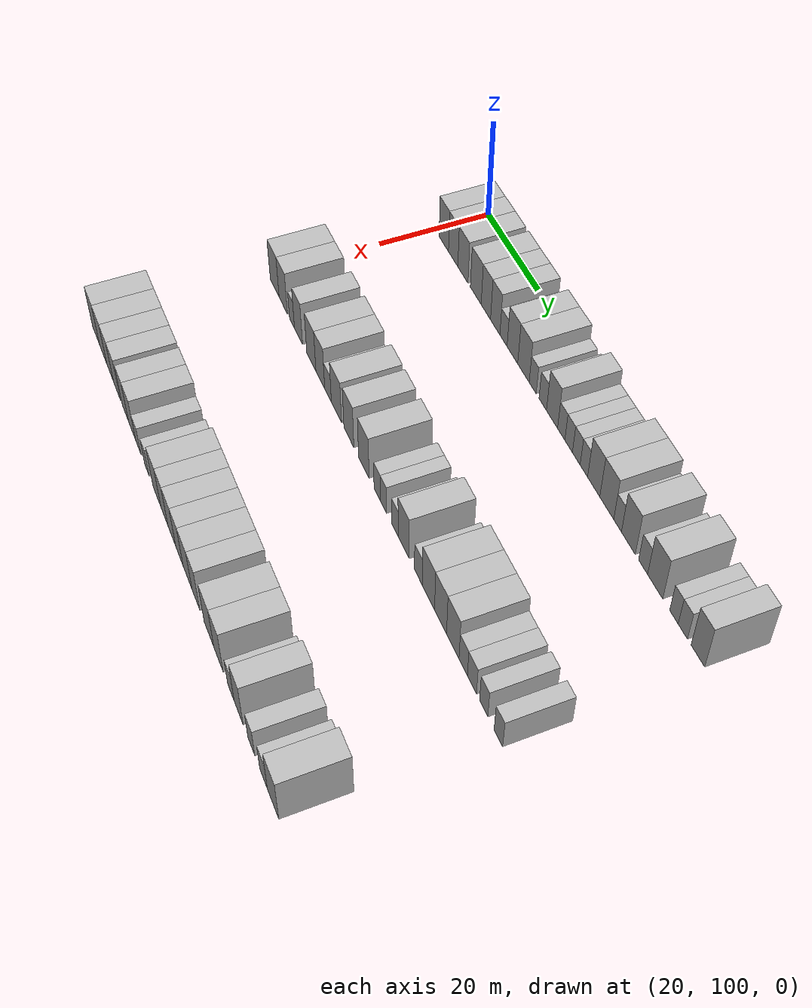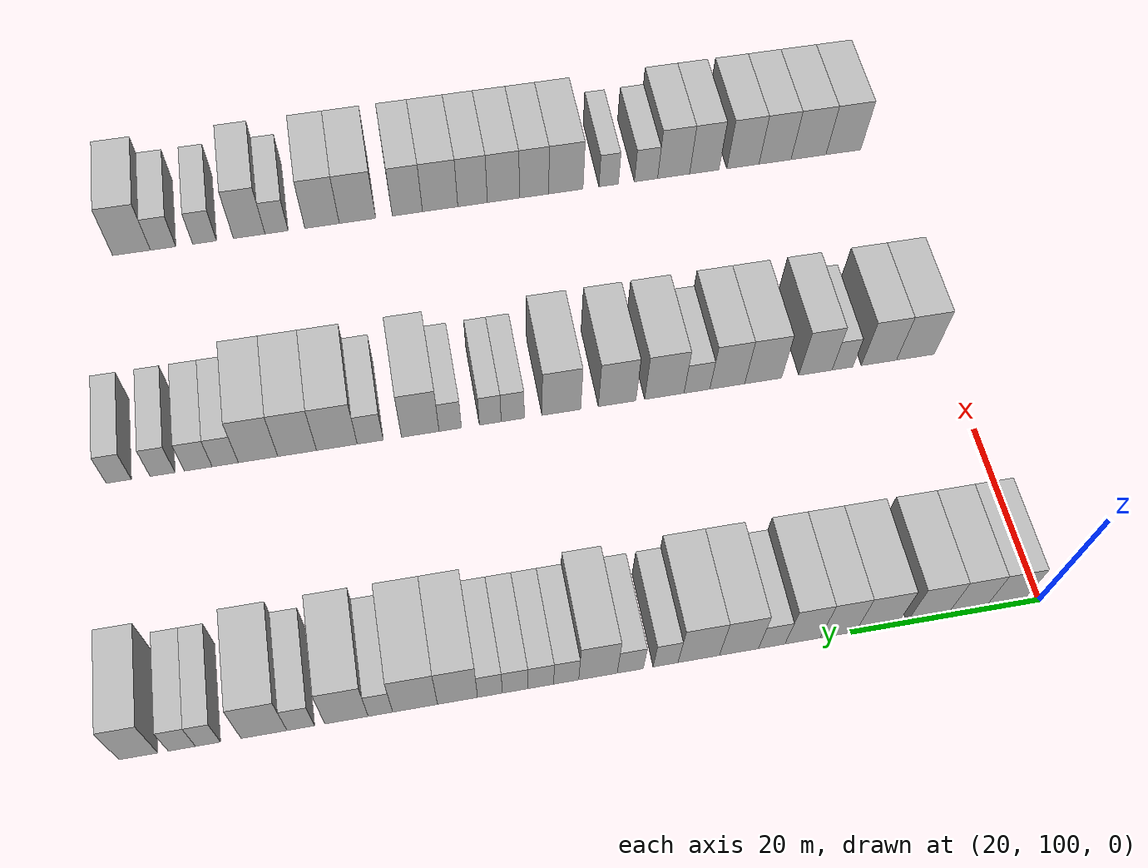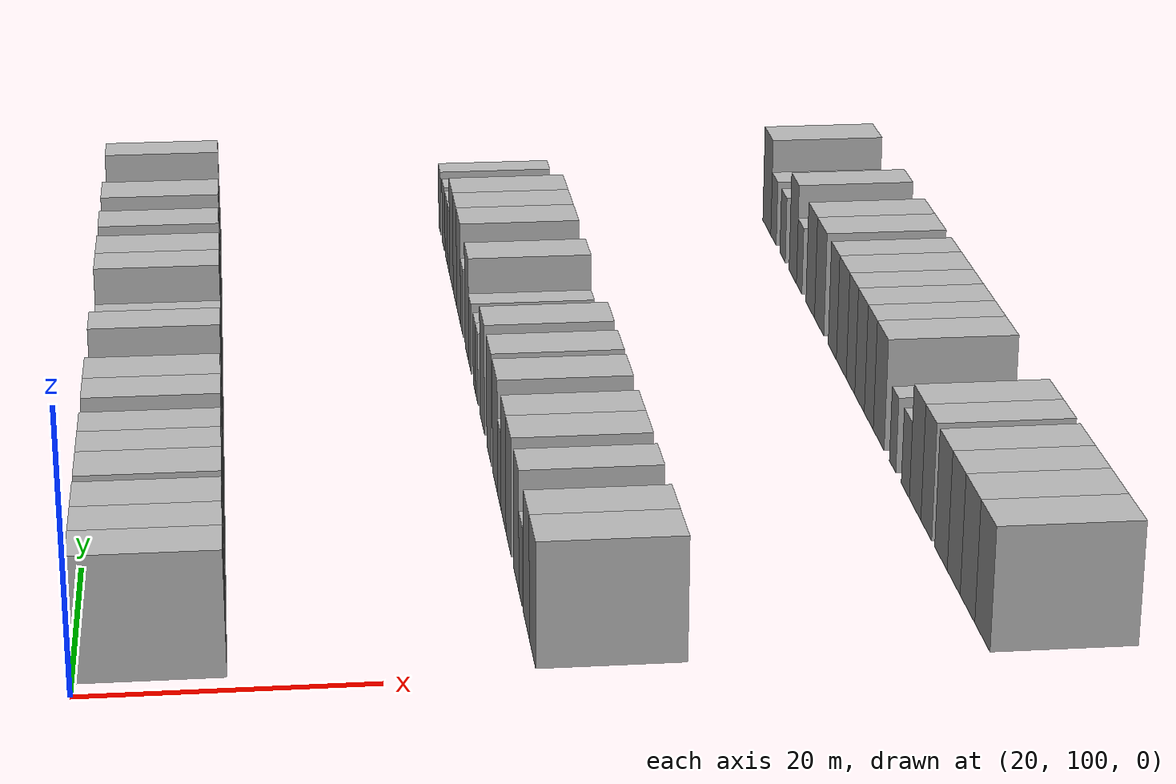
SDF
<sdf version="1.6">
 <world name="default">
  <model name="building_94">
   <static>1</static>
   <pose>25.0000 103.9227 0 0.000000 0.000000 0.000000</pose>
   <link name="link">
    <pose>0 0 4.50 0 0 0</pose>
    <collision name="collision"><geometry><box><size>10.0000 4.0367 9.0000</size></box></geometry></collision>
    <visual name="visual">
     <cast_shadows>0</cast_shadows>
     <geometry><box><size>10.0000 4.0367 9.0000</size></box></geometry>
     <material>
      <script>
       <uri>model://HANNAS_wall/materials/scripts</uri>
       <uri>model://HANNAS_wall/materials/textures</uri>
       <name>vrc/HANNAS_wall</name>
      </script>
     </material>
    </visual>
   </link>
  </model>
  <model name="building_95">
   <static>1</static>
   <pose>25.0000 107.9242 0 0.000000 0.000000 0.000000</pose>
   <link name="link">
    <pose>0 0 4.50 0 0 0</pose>
    <collision name="collision"><geometry><box><size>10.0000 3.9663 9.0000</size></box></geometry></collision>
    <visual name="visual">
     <cast_shadows>0</cast_shadows>
     <geometry><box><size>10.0000 3.9663 9.0000</size></box></geometry>
     <material>
      <script>
       <uri>model://HANNAS_wall/materials/scripts</uri>
       <uri>model://HANNAS_wall/materials/textures</uri>
       <name>vrc/HANNAS_wall</name>
      </script>
     </material>
    </visual>
   </link>
  </model>
  <model name="building_96">
   <static>1</static>
   <pose>25.0000 112.0197 0 0.000000 0.000000 0.000000</pose>
   <link name="link">
    <pose>0 0 4.50 0 0 0</pose>
    <collision name="collision"><geometry><box><size>10.0000 4.2246 9.0000</size></box></geometry></collision>
    <visual name="visual">
     <cast_shadows>0</cast_shadows>
     <geometry><box><size>10.0000 4.2246 9.0000</size></box></geometry>
     <material>
      <script>
       <uri>model://HANNAS_wall/materials/scripts</uri>
       <uri>model://HANNAS_wall/materials/textures</uri>
       <name>vrc/HANNAS_wall</name>
      </script>
     </material>
    </visual>
   </link>
  </model>
  <model name="building_97">
   <static>1</static>
   <pose>25.0000 117.3238 0 0.000000 0.000000 0.000000</pose>
   <link name="link">
    <pose>0 0 4.50 0 0 0</pose>
    <collision name="collision"><geometry><box><size>10.0000 4.3836 9.0000</size></box></geometry></collision>
    <visual name="visual">
     <cast_shadows>0</cast_shadows>
     <geometry><box><size>10.0000 4.3836 9.0000</size></box></geometry>
     <material>
      <script>
       <uri>model://HANNAS_wall/materials/scripts</uri>
       <uri>model://HANNAS_wall/materials/textures</uri>
       <name>vrc/HANNAS_wall</name>
      </script>
     </material>
    </visual>
   </link>
  </model>
  <model name="building_98">
   <static>1</static>
   <pose>25.0000 121.3828 0 0.000000 0.000000 0.000000</pose>
   <link name="link">
    <pose>0 0 4.50 0 0 0</pose>
    <collision name="collision"><geometry><box><size>10.0000 3.7343 9.0000</size></box></geometry></collision>
    <visual name="visual">
     <cast_shadows>0</cast_shadows>
     <geometry><box><size>10.0000 3.7343 9.0000</size></box></geometry>
     <material>
      <script>
       <uri>model://HANNAS_wall/materials/scripts</uri>
       <uri>model://HANNAS_wall/materials/textures</uri>
       <name>vrc/HANNAS_wall</name>
      </script>
     </material>
    </visual>
   </link>
  </model>
  <model name="building_99">
   <static>1</static>
   <pose>25.0000 125.0819 0 0.000000 0.000000 0.000000</pose>
   <link name="link">
    <pose>0 0 4.50 0 0 0</pose>
    <collision name="collision"><geometry><box><size>10.0000 3.6638 9.0000</size></box></geometry></collision>
    <visual name="visual">
     <cast_shadows>0</cast_shadows>
     <geometry><box><size>10.0000 3.6638 9.0000</size></box></geometry>
     <material>
      <script>
       <uri>model://HANNAS_wall/materials/scripts</uri>
       <uri>model://HANNAS_wall/materials/textures</uri>
       <name>vrc/HANNAS_wall</name>
      </script>
     </material>
    </visual>
   </link>
  </model>
  <model name="building_100">
   <static>1</static>
   <pose>25.0000 128.2956 0 0.000000 0.000000 0.000000</pose>
   <link name="link">
    <pose>0 0 3.00 0 0 0</pose>
    <collision name="collision"><geometry><box><size>10.0000 2.7637 6.0000</size></box></geometry></collision>
    <visual name="visual">
     <cast_shadows>0</cast_shadows>
     <geometry><box><size>10.0000 2.7637 6.0000</size></box></geometry>
     <material>
      <script>
       <uri>model://HANNAS_wall/materials/scripts</uri>
       <uri>model://HANNAS_wall/materials/textures</uri>
       <name>vrc/HANNAS_wall</name>
      </script>
     </material>
    </visual>
   </link>
  </model>
  <model name="building_101">
   <static>1</static>
   <pose>25.0000 131.6940 0 0.000000 0.000000 0.000000</pose>
   <link name="link">
    <pose>0 0 4.50 0 0 0</pose>
    <collision name="collision"><geometry><box><size>10.0000 4.0330 9.0000</size></box></geometry></collision>
    <visual name="visual">
     <cast_shadows>0</cast_shadows>
     <geometry><box><size>10.0000 4.0330 9.0000</size></box></geometry>
     <material>
      <script>
       <uri>model://HANNAS_wall/materials/scripts</uri>
       <uri>model://HANNAS_wall/materials/textures</uri>
       <name>vrc/HANNAS_wall</name>
      </script>
     </material>
    </visual>
   </link>
  </model>
  <model name="building_102">
   <static>1</static>
   <pose>25.0000 135.8416 0 0.000000 0.000000 0.000000</pose>
   <link name="link">
    <pose>0 0 4.50 0 0 0</pose>
    <collision name="collision"><geometry><box><size>10.0000 4.2621 9.0000</size></box></geometry></collision>
    <visual name="visual">
     <cast_shadows>0</cast_shadows>
     <geometry><box><size>10.0000 4.2621 9.0000</size></box></geometry>
     <material>
      <script>
       <uri>model://HANNAS_wall/materials/scripts</uri>
       <uri>model://HANNAS_wall/materials/textures</uri>
       <name>vrc/HANNAS_wall</name>
      </script>
     </material>
    </visual>
   </link>
  </model>
  <model name="building_103">
   <static>1</static>
   <pose>25.0000 139.2490 0 0.000000 0.000000 0.000000</pose>
   <link name="link">
    <pose>0 0 3.00 0 0 0</pose>
    <collision name="collision"><geometry><box><size>10.0000 2.5527 6.0000</size></box></geometry></collision>
    <visual name="visual">
     <cast_shadows>0</cast_shadows>
     <geometry><box><size>10.0000 2.5527 6.0000</size></box></geometry>
     <material>
      <script>
       <uri>model://HANNAS_wall/materials/scripts</uri>
       <uri>model://HANNAS_wall/materials/textures</uri>
       <name>vrc/HANNAS_wall</name>
      </script>
     </material>
    </visual>
   </link>
  </model>
  <model name="building_104">
   <static>1</static>
   <pose>25.0000 142.8617 0 0.000000 0.000000 0.000000</pose>
   <link name="link">
    <pose>0 0 3.00 0 0 0</pose>
    <collision name="collision"><geometry><box><size>10.0000 2.6727 6.0000</size></box></geometry></collision>
    <visual name="visual">
     <cast_shadows>0</cast_shadows>
     <geometry><box><size>10.0000 2.6727 6.0000</size></box></geometry>
     <material>
      <script>
       <uri>model://HANNAS_wall/materials/scripts</uri>
       <uri>model://HANNAS_wall/materials/textures</uri>
       <name>vrc/HANNAS_wall</name>
      </script>
     </material>
    </visual>
   </link>
  </model>
  <model name="building_105">
   <static>1</static>
   <pose>25.0000 146.1495 0 0.000000 0.000000 0.000000</pose>
   <link name="link">
    <pose>0 0 4.50 0 0 0</pose>
    <collision name="collision"><geometry><box><size>10.0000 3.9028 9.0000</size></box></geometry></collision>
    <visual name="visual">
     <cast_shadows>0</cast_shadows>
     <geometry><box><size>10.0000 3.9028 9.0000</size></box></geometry>
     <material>
      <script>
       <uri>model://HANNAS_wall/materials/scripts</uri>
       <uri>model://HANNAS_wall/materials/textures</uri>
       <name>vrc/HANNAS_wall</name>
      </script>
     </material>
    </visual>
   </link>
  </model>
  <model name="building_106">
   <static>1</static>
   <pose>25.0000 149.3687 0 0.000000 0.000000 0.000000</pose>
   <link name="link">
    <pose>0 0 3.00 0 0 0</pose>
    <collision name="collision"><geometry><box><size>10.0000 2.5357 6.0000</size></box></geometry></collision>
    <visual name="visual">
     <cast_shadows>0</cast_shadows>
     <geometry><box><size>10.0000 2.5357 6.0000</size></box></geometry>
     <material>
      <script>
       <uri>model://HANNAS_wall/materials/scripts</uri>
       <uri>model://HANNAS_wall/materials/textures</uri>
       <name>vrc/HANNAS_wall</name>
      </script>
     </material>
    </visual>
   </link>
  </model>
  <model name="building_107">
   <static>1</static>
   <pose>25.0000 151.9216 0 0.000000 0.000000 0.000000</pose>
   <link name="link">
    <pose>0 0 3.00 0 0 0</pose>
    <collision name="collision"><geometry><box><size>10.0000 2.5700 6.0000</size></box></geometry></collision>
    <visual name="visual">
     <cast_shadows>0</cast_shadows>
     <geometry><box><size>10.0000 2.5700 6.0000</size></box></geometry>
     <material>
      <script>
       <uri>model://HANNAS_wall/materials/scripts</uri>
       <uri>model://HANNAS_wall/materials/textures</uri>
       <name>vrc/HANNAS_wall</name>
      </script>
     </material>
    </visual>
   </link>
  </model>
  <model name="building_108">
   <static>1</static>
   <pose>25.0000 154.5004 0 0.000000 0.000000 0.000000</pose>
   <link name="link">
    <pose>0 0 3.00 0 0 0</pose>
    <collision name="collision"><geometry><box><size>10.0000 2.5876 6.0000</size></box></geometry></collision>
    <visual name="visual">
     <cast_shadows>0</cast_shadows>
     <geometry><box><size>10.0000 2.5876 6.0000</size></box></geometry>
     <material>
      <script>
       <uri>model://HANNAS_wall/materials/scripts</uri>
       <uri>model://HANNAS_wall/materials/textures</uri>
       <name>vrc/HANNAS_wall</name>
      </script>
     </material>
    </visual>
   </link>
  </model>
  <model name="building_109">
   <static>1</static>
   <pose>25.0000 157.0377 0 0.000000 0.000000 0.000000</pose>
   <link name="link">
    <pose>0 0 3.00 0 0 0</pose>
    <collision name="collision"><geometry><box><size>10.0000 2.4871 6.0000</size></box></geometry></collision>
    <visual name="visual">
     <cast_shadows>0</cast_shadows>
     <geometry><box><size>10.0000 2.4871 6.0000</size></box></geometry>
     <material>
      <script>
       <uri>model://HANNAS_wall/materials/scripts</uri>
       <uri>model://HANNAS_wall/materials/textures</uri>
       <name>vrc/HANNAS_wall</name>
      </script>
     </material>
    </visual>
   </link>
  </model>
  <model name="building_110">
   <static>1</static>
   <pose>25.0000 160.2730 0 0.000000 0.000000 0.000000</pose>
   <link name="link">
    <pose>0 0 4.50 0 0 0</pose>
    <collision name="collision"><geometry><box><size>10.0000 3.9833 9.0000</size></box></geometry></collision>
    <visual name="visual">
     <cast_shadows>0</cast_shadows>
     <geometry><box><size>10.0000 3.9833 9.0000</size></box></geometry>
     <material>
      <script>
       <uri>model://HANNAS_wall/materials/scripts</uri>
       <uri>model://HANNAS_wall/materials/textures</uri>
       <name>vrc/HANNAS_wall</name>
      </script>
     </material>
    </visual>
   </link>
  </model>
  <model name="building_111">
   <static>1</static>
   <pose>25.0000 164.4878 0 0.000000 0.000000 0.000000</pose>
   <link name="link">
    <pose>0 0 4.50 0 0 0</pose>
    <collision name="collision"><geometry><box><size>10.0000 4.4463 9.0000</size></box></geometry></collision>
    <visual name="visual">
     <cast_shadows>0</cast_shadows>
     <geometry><box><size>10.0000 4.4463 9.0000</size></box></geometry>
     <material>
      <script>
       <uri>model://HANNAS_wall/materials/scripts</uri>
       <uri>model://HANNAS_wall/materials/textures</uri>
       <name>vrc/HANNAS_wall</name>
      </script>
     </material>
    </visual>
   </link>
  </model>
  <model name="building_112">
   <static>1</static>
   <pose>25.0000 167.9205 0 0.000000 0.000000 0.000000</pose>
   <link name="link">
    <pose>0 0 3.00 0 0 0</pose>
    <collision name="collision"><geometry><box><size>10.0000 2.4192 6.0000</size></box></geometry></collision>
    <visual name="visual">
     <cast_shadows>0</cast_shadows>
     <geometry><box><size>10.0000 2.4192 6.0000</size></box></geometry>
     <material>
      <script>
       <uri>model://HANNAS_wall/materials/scripts</uri>
       <uri>model://HANNAS_wall/materials/textures</uri>
       <name>vrc/HANNAS_wall</name>
      </script>
     </material>
    </visual>
   </link>
  </model>
  <model name="building_113">
   <static>1</static>
   <pose>25.0000 171.2638 0 0.000000 0.000000 0.000000</pose>
   <link name="link">
    <pose>0 0 4.50 0 0 0</pose>
    <collision name="collision"><geometry><box><size>10.0000 4.2674 9.0000</size></box></geometry></collision>
    <visual name="visual">
     <cast_shadows>0</cast_shadows>
     <geometry><box><size>10.0000 4.2674 9.0000</size></box></geometry>
     <material>
      <script>
       <uri>model://HANNAS_wall/materials/scripts</uri>
       <uri>model://HANNAS_wall/materials/textures</uri>
       <name>vrc/HANNAS_wall</name>
      </script>
     </material>
    </visual>
   </link>
  </model>
  <model name="building_114">
   <static>1</static>
   <pose>25.0000 175.7431 0 0.000000 0.000000 0.000000</pose>
   <link name="link">
    <pose>0 0 3.00 0 0 0</pose>
    <collision name="collision"><geometry><box><size>10.0000 2.6913 6.0000</size></box></geometry></collision>
    <visual name="visual">
     <cast_shadows>0</cast_shadows>
     <geometry><box><size>10.0000 2.6913 6.0000</size></box></geometry>
     <material>
      <script>
       <uri>model://HANNAS_wall/materials/scripts</uri>
       <uri>model://HANNAS_wall/materials/textures</uri>
       <name>vrc/HANNAS_wall</name>
      </script>
     </material>
    </visual>
   </link>
  </model>
  <model name="building_115">
   <static>1</static>
   <pose>25.0000 179.3215 0 0.000000 0.000000 0.000000</pose>
   <link name="link">
    <pose>0 0 4.50 0 0 0</pose>
    <collision name="collision"><geometry><box><size>10.0000 4.4655 9.0000</size></box></geometry></collision>
    <visual name="visual">
     <cast_shadows>0</cast_shadows>
     <geometry><box><size>10.0000 4.4655 9.0000</size></box></geometry>
     <material>
      <script>
       <uri>model://HANNAS_wall/materials/scripts</uri>
       <uri>model://HANNAS_wall/materials/textures</uri>
       <name>vrc/HANNAS_wall</name>
      </script>
     </material>
    </visual>
   </link>
  </model>
  <model name="building_116">
   <static>1</static>
   <pose>25.0000 184.7603 0 0.000000 0.000000 0.000000</pose>
   <link name="link">
    <pose>0 0 3.00 0 0 0</pose>
    <collision name="collision"><geometry><box><size>10.0000 2.4120 6.0000</size></box></geometry></collision>
    <visual name="visual">
     <cast_shadows>0</cast_shadows>
     <geometry><box><size>10.0000 2.4120 6.0000</size></box></geometry>
     <material>
      <script>
       <uri>model://HANNAS_wall/materials/scripts</uri>
       <uri>model://HANNAS_wall/materials/textures</uri>
       <name>vrc/HANNAS_wall</name>
      </script>
     </material>
    </visual>
   </link>
  </model>
  <model name="building_117">
   <static>1</static>
   <pose>25.0000 187.2755 0 0.000000 0.000000 0.000000</pose>
   <link name="link">
    <pose>0 0 3.00 0 0 0</pose>
    <collision name="collision"><geometry><box><size>10.0000 2.6185 6.0000</size></box></geometry></collision>
    <visual name="visual">
     <cast_shadows>0</cast_shadows>
     <geometry><box><size>10.0000 2.6185 6.0000</size></box></geometry>
     <material>
      <script>
       <uri>model://HANNAS_wall/materials/scripts</uri>
       <uri>model://HANNAS_wall/materials/textures</uri>
       <name>vrc/HANNAS_wall</name>
      </script>
     </material>
    </visual>
   </link>
  </model>
  <model name="building_118">
   <static>1</static>
   <pose>25.0000 191.4516 0 0.000000 0.000000 0.000000</pose>
   <link name="link">
    <pose>0 0 4.50 0 0 0</pose>
    <collision name="collision"><geometry><box><size>10.0000 3.7337 9.0000</size></box></geometry></collision>
    <visual name="visual">
     <cast_shadows>0</cast_shadows>
     <geometry><box><size>10.0000 3.7337 9.0000</size></box></geometry>
     <material>
      <script>
       <uri>model://HANNAS_wall/materials/scripts</uri>
       <uri>model://HANNAS_wall/materials/textures</uri>
       <name>vrc/HANNAS_wall</name>
      </script>
     </material>
    </visual>
   </link>
  </model>
  <model name="building_221">
   <static>1</static>
   <pose>55.0000 103.4257 0 0.000000 0.000000 0.000000</pose>
   <link name="link">
    <pose>0 0 4.50 0 0 0</pose>
    <collision name="collision"><geometry><box><size>10.0000 4.4380 9.0000</size></box></geometry></collision>
    <visual name="visual">
     <cast_shadows>0</cast_shadows>
     <geometry><box><size>10.0000 4.4380 9.0000</size></box></geometry>
     <material>
      <script>
       <uri>model://HANNAS_wall/materials/scripts</uri>
       <uri>model://HANNAS_wall/materials/textures</uri>
       <name>vrc/HANNAS_wall</name>
      </script>
     </material>
    </visual>
   </link>
  </model>
  <model name="building_222">
   <static>1</static>
   <pose>55.0000 107.7151 0 0.000000 0.000000 0.000000</pose>
   <link name="link">
    <pose>0 0 4.50 0 0 0</pose>
    <collision name="collision"><geometry><box><size>10.0000 4.1409 9.0000</size></box></geometry></collision>
    <visual name="visual">
     <cast_shadows>0</cast_shadows>
     <geometry><box><size>10.0000 4.1409 9.0000</size></box></geometry>
     <material>
      <script>
       <uri>model://HANNAS_wall/materials/scripts</uri>
       <uri>model://HANNAS_wall/materials/textures</uri>
       <name>vrc/HANNAS_wall</name>
      </script>
     </material>
    </visual>
   </link>
  </model>
  <model name="building_223">
   <static>1</static>
   <pose>55.0000 111.9938 0 0.000000 0.000000 0.000000</pose>
   <link name="link">
    <pose>0 0 3.00 0 0 0</pose>
    <collision name="collision"><geometry><box><size>10.0000 2.4165 6.0000</size></box></geometry></collision>
    <visual name="visual">
     <cast_shadows>0</cast_shadows>
     <geometry><box><size>10.0000 2.4165 6.0000</size></box></geometry>
     <material>
      <script>
       <uri>model://HANNAS_wall/materials/scripts</uri>
       <uri>model://HANNAS_wall/materials/textures</uri>
       <name>vrc/HANNAS_wall</name>
      </script>
     </material>
    </visual>
   </link>
  </model>
  <model name="building_224">
   <static>1</static>
   <pose>55.0000 115.1436 0 0.000000 0.000000 0.000000</pose>
   <link name="link">
    <pose>0 0 4.50 0 0 0</pose>
    <collision name="collision"><geometry><box><size>10.0000 3.8831 9.0000</size></box></geometry></collision>
    <visual name="visual">
     <cast_shadows>0</cast_shadows>
     <geometry><box><size>10.0000 3.8831 9.0000</size></box></geometry>
     <material>
      <script>
       <uri>model://HANNAS_wall/materials/scripts</uri>
       <uri>model://HANNAS_wall/materials/textures</uri>
       <name>vrc/HANNAS_wall</name>
      </script>
     </material>
    </visual>
   </link>
  </model>
  <model name="building_225">
   <static>1</static>
   <pose>55.0000 121.2153 0 0.000000 0.000000 0.000000</pose>
   <link name="link">
    <pose>0 0 4.50 0 0 0</pose>
    <collision name="collision"><geometry><box><size>10.0000 4.2602 9.0000</size></box></geometry></collision>
    <visual name="visual">
     <cast_shadows>0</cast_shadows>
     <geometry><box><size>10.0000 4.2602 9.0000</size></box></geometry>
     <material>
      <script>
       <uri>model://HANNAS_wall/materials/scripts</uri>
       <uri>model://HANNAS_wall/materials/textures</uri>
       <name>vrc/HANNAS_wall</name>
      </script>
     </material>
    </visual>
   </link>
  </model>
  <model name="building_226">
   <static>1</static>
   <pose>55.0000 125.3551 0 0.000000 0.000000 0.000000</pose>
   <link name="link">
    <pose>0 0 4.50 0 0 0</pose>
    <collision name="collision"><geometry><box><size>10.0000 4.0195 9.0000</size></box></geometry></collision>
    <visual name="visual">
     <cast_shadows>0</cast_shadows>
     <geometry><box><size>10.0000 4.0195 9.0000</size></box></geometry>
     <material>
      <script>
       <uri>model://HANNAS_wall/materials/scripts</uri>
       <uri>model://HANNAS_wall/materials/textures</uri>
       <name>vrc/HANNAS_wall</name>
      </script>
     </material>
    </visual>
   </link>
  </model>
  <model name="building_227">
   <static>1</static>
   <pose>55.0000 128.8452 0 0.000000 0.000000 0.000000</pose>
   <link name="link">
    <pose>0 0 3.00 0 0 0</pose>
    <collision name="collision"><geometry><box><size>10.0000 2.9608 6.0000</size></box></geometry></collision>
    <visual name="visual">
     <cast_shadows>0</cast_shadows>
     <geometry><box><size>10.0000 2.9608 6.0000</size></box></geometry>
     <material>
      <script>
       <uri>model://HANNAS_wall/materials/scripts</uri>
       <uri>model://HANNAS_wall/materials/textures</uri>
       <name>vrc/HANNAS_wall</name>
      </script>
     </material>
    </visual>
   </link>
  </model>
  <model name="building_228">
   <static>1</static>
   <pose>55.0000 132.5725 0 0.000000 0.000000 0.000000</pose>
   <link name="link">
    <pose>0 0 4.50 0 0 0</pose>
    <collision name="collision"><geometry><box><size>10.0000 4.4936 9.0000</size></box></geometry></collision>
    <visual name="visual">
     <cast_shadows>0</cast_shadows>
     <geometry><box><size>10.0000 4.4936 9.0000</size></box></geometry>
     <material>
      <script>
       <uri>model://HANNAS_wall/materials/scripts</uri>
       <uri>model://HANNAS_wall/materials/textures</uri>
       <name>vrc/HANNAS_wall</name>
      </script>
     </material>
    </visual>
   </link>
  </model>
  <model name="building_229">
   <static>1</static>
   <pose>55.0000 137.9473 0 0.000000 0.000000 0.000000</pose>
   <link name="link">
    <pose>0 0 4.50 0 0 0</pose>
    <collision name="collision"><geometry><box><size>10.0000 4.2560 9.0000</size></box></geometry></collision>
    <visual name="visual">
     <cast_shadows>0</cast_shadows>
     <geometry><box><size>10.0000 4.2560 9.0000</size></box></geometry>
     <material>
      <script>
       <uri>model://HANNAS_wall/materials/scripts</uri>
       <uri>model://HANNAS_wall/materials/textures</uri>
       <name>vrc/HANNAS_wall</name>
      </script>
     </material>
    </visual>
   </link>
  </model>
  <model name="building_230">
   <static>1</static>
   <pose>55.0000 144.2486 0 0.000000 0.000000 0.000000</pose>
   <link name="link">
    <pose>0 0 4.50 0 0 0</pose>
    <collision name="collision"><geometry><box><size>10.0000 4.3468 9.0000</size></box></geometry></collision>
    <visual name="visual">
     <cast_shadows>0</cast_shadows>
     <geometry><box><size>10.0000 4.3468 9.0000</size></box></geometry>
     <material>
      <script>
       <uri>model://HANNAS_wall/materials/scripts</uri>
       <uri>model://HANNAS_wall/materials/textures</uri>
       <name>vrc/HANNAS_wall</name>
      </script>
     </material>
    </visual>
   </link>
  </model>
  <model name="building_231">
   <static>1</static>
   <pose>55.0000 149.7119 0 0.000000 0.000000 0.000000</pose>
   <link name="link">
    <pose>0 0 3.00 0 0 0</pose>
    <collision name="collision"><geometry><box><size>10.0000 2.5798 6.0000</size></box></geometry></collision>
    <visual name="visual">
     <cast_shadows>0</cast_shadows>
     <geometry><box><size>10.0000 2.5798 6.0000</size></box></geometry>
     <material>
      <script>
       <uri>model://HANNAS_wall/materials/scripts</uri>
       <uri>model://HANNAS_wall/materials/textures</uri>
       <name>vrc/HANNAS_wall</name>
      </script>
     </material>
    </visual>
   </link>
  </model>
  <model name="building_232">
   <static>1</static>
   <pose>55.0000 152.2145 0 0.000000 0.000000 0.000000</pose>
   <link name="link">
    <pose>0 0 3.00 0 0 0</pose>
    <collision name="collision"><geometry><box><size>10.0000 2.4254 6.0000</size></box></geometry></collision>
    <visual name="visual">
     <cast_shadows>0</cast_shadows>
     <geometry><box><size>10.0000 2.4254 6.0000</size></box></geometry>
     <material>
      <script>
       <uri>model://HANNAS_wall/materials/scripts</uri>
       <uri>model://HANNAS_wall/materials/textures</uri>
       <name>vrc/HANNAS_wall</name>
      </script>
     </material>
    </visual>
   </link>
  </model>
  <model name="building_233">
   <static>1</static>
   <pose>55.0000 156.6708 0 0.000000 0.000000 0.000000</pose>
   <link name="link">
    <pose>0 0 3.00 0 0 0</pose>
    <collision name="collision"><geometry><box><size>10.0000 2.4872 6.0000</size></box></geometry></collision>
    <visual name="visual">
     <cast_shadows>0</cast_shadows>
     <geometry><box><size>10.0000 2.4872 6.0000</size></box></geometry>
     <material>
      <script>
       <uri>model://HANNAS_wall/materials/scripts</uri>
       <uri>model://HANNAS_wall/materials/textures</uri>
       <name>vrc/HANNAS_wall</name>
      </script>
     </material>
    </visual>
   </link>
  </model>
  <model name="building_234">
   <static>1</static>
   <pose>55.0000 159.9887 0 0.000000 0.000000 0.000000</pose>
   <link name="link">
    <pose>0 0 4.50 0 0 0</pose>
    <collision name="collision"><geometry><box><size>10.0000 4.1486 9.0000</size></box></geometry></collision>
    <visual name="visual">
     <cast_shadows>0</cast_shadows>
     <geometry><box><size>10.0000 4.1486 9.0000</size></box></geometry>
     <material>
      <script>
       <uri>model://HANNAS_wall/materials/scripts</uri>
       <uri>model://HANNAS_wall/materials/textures</uri>
       <name>vrc/HANNAS_wall</name>
      </script>
     </material>
    </visual>
   </link>
  </model>
  <model name="building_235">
   <static>1</static>
   <pose>55.0000 165.4939 0 0.000000 0.000000 0.000000</pose>
   <link name="link">
    <pose>0 0 3.00 0 0 0</pose>
    <collision name="collision"><geometry><box><size>10.0000 2.8617 6.0000</size></box></geometry></collision>
    <visual name="visual">
     <cast_shadows>0</cast_shadows>
     <geometry><box><size>10.0000 2.8617 6.0000</size></box></geometry>
     <material>
      <script>
       <uri>model://HANNAS_wall/materials/scripts</uri>
       <uri>model://HANNAS_wall/materials/textures</uri>
       <name>vrc/HANNAS_wall</name>
      </script>
     </material>
    </visual>
   </link>
  </model>
  <model name="building_236">
   <static>1</static>
   <pose>55.0000 169.1514 0 0.000000 0.000000 0.000000</pose>
   <link name="link">
    <pose>0 0 4.50 0 0 0</pose>
    <collision name="collision"><geometry><box><size>10.0000 4.4534 9.0000</size></box></geometry></collision>
    <visual name="visual">
     <cast_shadows>0</cast_shadows>
     <geometry><box><size>10.0000 4.4534 9.0000</size></box></geometry>
     <material>
      <script>
       <uri>model://HANNAS_wall/materials/scripts</uri>
       <uri>model://HANNAS_wall/materials/textures</uri>
       <name>vrc/HANNAS_wall</name>
      </script>
     </material>
    </visual>
   </link>
  </model>
  <model name="building_237">
   <static>1</static>
   <pose>55.0000 173.4820 0 0.000000 0.000000 0.000000</pose>
   <link name="link">
    <pose>0 0 4.50 0 0 0</pose>
    <collision name="collision"><geometry><box><size>10.0000 4.2079 9.0000</size></box></geometry></collision>
    <visual name="visual">
     <cast_shadows>0</cast_shadows>
     <geometry><box><size>10.0000 4.2079 9.0000</size></box></geometry>
     <material>
      <script>
       <uri>model://HANNAS_wall/materials/scripts</uri>
       <uri>model://HANNAS_wall/materials/textures</uri>
       <name>vrc/HANNAS_wall</name>
      </script>
     </material>
    </visual>
   </link>
  </model>
  <model name="building_238">
   <static>1</static>
   <pose>55.0000 177.7236 0 0.000000 0.000000 0.000000</pose>
   <link name="link">
    <pose>0 0 4.50 0 0 0</pose>
    <collision name="collision"><geometry><box><size>10.0000 4.2754 9.0000</size></box></geometry></collision>
    <visual name="visual">
     <cast_shadows>0</cast_shadows>
     <geometry><box><size>10.0000 4.2754 9.0000</size></box></geometry>
     <material>
      <script>
       <uri>model://HANNAS_wall/materials/scripts</uri>
       <uri>model://HANNAS_wall/materials/textures</uri>
       <name>vrc/HANNAS_wall</name>
      </script>
     </material>
    </visual>
   </link>
  </model>
  <model name="building_239">
   <static>1</static>
   <pose>55.0000 181.2702 0 0.000000 0.000000 0.000000</pose>
   <link name="link">
    <pose>0 0 3.00 0 0 0</pose>
    <collision name="collision"><geometry><box><size>10.0000 2.8178 6.0000</size></box></geometry></collision>
    <visual name="visual">
     <cast_shadows>0</cast_shadows>
     <geometry><box><size>10.0000 2.8178 6.0000</size></box></geometry>
     <material>
      <script>
       <uri>model://HANNAS_wall/materials/scripts</uri>
       <uri>model://HANNAS_wall/materials/textures</uri>
       <name>vrc/HANNAS_wall</name>
      </script>
     </material>
    </visual>
   </link>
  </model>
  <model name="building_240">
   <static>1</static>
   <pose>55.0000 184.1757 0 0.000000 0.000000 0.000000</pose>
   <link name="link">
    <pose>0 0 3.00 0 0 0</pose>
    <collision name="collision"><geometry><box><size>10.0000 2.9931 6.0000</size></box></geometry></collision>
    <visual name="visual">
     <cast_shadows>0</cast_shadows>
     <geometry><box><size>10.0000 2.9931 6.0000</size></box></geometry>
     <material>
      <script>
       <uri>model://HANNAS_wall/materials/scripts</uri>
       <uri>model://HANNAS_wall/materials/textures</uri>
       <name>vrc/HANNAS_wall</name>
      </script>
     </material>
    </visual>
   </link>
  </model>
  <model name="building_241">
   <static>1</static>
   <pose>55.0000 188.0081 0 0.000000 0.000000 0.000000</pose>
   <link name="link">
    <pose>0 0 3.00 0 0 0</pose>
    <collision name="collision"><geometry><box><size>10.0000 2.6716 6.0000</size></box></geometry></collision>
    <visual name="visual">
     <cast_shadows>0</cast_shadows>
     <geometry><box><size>10.0000 2.6716 6.0000</size></box></geometry>
     <material>
      <script>
       <uri>model://HANNAS_wall/materials/scripts</uri>
       <uri>model://HANNAS_wall/materials/textures</uri>
       <name>vrc/HANNAS_wall</name>
      </script>
     </material>
    </visual>
   </link>
  </model>
  <model name="building_242">
   <static>1</static>
   <pose>55.0000 192.6853 0 0.000000 0.000000 0.000000</pose>
   <link name="link">
    <pose>0 0 3.00 0 0 0</pose>
    <collision name="collision"><geometry><box><size>10.0000 2.6829 6.0000</size></box></geometry></collision>
    <visual name="visual">
     <cast_shadows>0</cast_shadows>
     <geometry><box><size>10.0000 2.6829 6.0000</size></box></geometry>
     <material>
      <script>
       <uri>model://HANNAS_wall/materials/scripts</uri>
       <uri>model://HANNAS_wall/materials/textures</uri>
       <name>vrc/HANNAS_wall</name>
      </script>
     </material>
    </visual>
   </link>
  </model>
  <model name="building_363">
   <static>1</static>
   <pose>85.0000 102.9668 0 0.000000 0.000000 0.000000</pose>
   <link name="link">
    <pose>0 0 4.50 0 0 0</pose>
    <collision name="collision"><geometry><box><size>10.0000 4.4744 9.0000</size></box></geometry></collision>
    <visual name="visual">
     <cast_shadows>0</cast_shadows>
     <geometry><box><size>10.0000 4.4744 9.0000</size></box></geometry>
     <material>
      <script>
       <uri>model://HANNAS_wall/materials/scripts</uri>
       <uri>model://HANNAS_wall/materials/textures</uri>
       <name>vrc/HANNAS_wall</name>
      </script>
     </material>
    </visual>
   </link>
  </model>
  <model name="building_364">
   <static>1</static>
   <pose>85.0000 107.4409 0 0.000000 0.000000 0.000000</pose>
   <link name="link">
    <pose>0 0 4.50 0 0 0</pose>
    <collision name="collision"><geometry><box><size>10.0000 4.4739 9.0000</size></box></geometry></collision>
    <visual name="visual">
     <cast_shadows>0</cast_shadows>
     <geometry><box><size>10.0000 4.4739 9.0000</size></box></geometry>
     <material>
      <script>
       <uri>model://HANNAS_wall/materials/scripts</uri>
       <uri>model://HANNAS_wall/materials/textures</uri>
       <name>vrc/HANNAS_wall</name>
      </script>
     </material>
    </visual>
   </link>
  </model>
  <model name="building_365">
   <static>1</static>
   <pose>85.0000 111.7240 0 0.000000 0.000000 0.000000</pose>
   <link name="link">
    <pose>0 0 4.50 0 0 0</pose>
    <collision name="collision"><geometry><box><size>10.0000 4.0924 9.0000</size></box></geometry></collision>
    <visual name="visual">
     <cast_shadows>0</cast_shadows>
     <geometry><box><size>10.0000 4.0924 9.0000</size></box></geometry>
     <material>
      <script>
       <uri>model://HANNAS_wall/materials/scripts</uri>
       <uri>model://HANNAS_wall/materials/textures</uri>
       <name>vrc/HANNAS_wall</name>
      </script>
     </material>
    </visual>
   </link>
  </model>
  <model name="building_366">
   <static>1</static>
   <pose>85.0000 115.8201 0 0.000000 0.000000 0.000000</pose>
   <link name="link">
    <pose>0 0 4.50 0 0 0</pose>
    <collision name="collision"><geometry><box><size>10.0000 4.0998 9.0000</size></box></geometry></collision>
    <visual name="visual">
     <cast_shadows>0</cast_shadows>
     <geometry><box><size>10.0000 4.0998 9.0000</size></box></geometry>
     <material>
      <script>
       <uri>model://HANNAS_wall/materials/scripts</uri>
       <uri>model://HANNAS_wall/materials/textures</uri>
       <name>vrc/HANNAS_wall</name>
      </script>
     </material>
    </visual>
   </link>
  </model>
  <model name="building_367">
   <static>1</static>
   <pose>85.0000 120.7266 0 0.000000 0.000000 0.000000</pose>
   <link name="link">
    <pose>0 0 4.50 0 0 0</pose>
    <collision name="collision"><geometry><box><size>10.0000 3.7131 9.0000</size></box></geometry></collision>
    <visual name="visual">
     <cast_shadows>0</cast_shadows>
     <geometry><box><size>10.0000 3.7131 9.0000</size></box></geometry>
     <material>
      <script>
       <uri>model://HANNAS_wall/materials/scripts</uri>
       <uri>model://HANNAS_wall/materials/textures</uri>
       <name>vrc/HANNAS_wall</name>
      </script>
     </material>
    </visual>
   </link>
  </model>
  <model name="building_368">
   <static>1</static>
   <pose>85.0000 124.5978 0 0.000000 0.000000 0.000000</pose>
   <link name="link">
    <pose>0 0 4.50 0 0 0</pose>
    <collision name="collision"><geometry><box><size>10.0000 4.0293 9.0000</size></box></geometry></collision>
    <visual name="visual">
     <cast_shadows>0</cast_shadows>
     <geometry><box><size>10.0000 4.0293 9.0000</size></box></geometry>
     <material>
      <script>
       <uri>model://HANNAS_wall/materials/scripts</uri>
       <uri>model://HANNAS_wall/materials/textures</uri>
       <name>vrc/HANNAS_wall</name>
      </script>
     </material>
    </visual>
   </link>
  </model>
  <model name="building_369">
   <static>1</static>
   <pose>85.0000 128.0731 0 0.000000 0.000000 0.000000</pose>
   <link name="link">
    <pose>0 0 3.00 0 0 0</pose>
    <collision name="collision"><geometry><box><size>10.0000 2.9213 6.0000</size></box></geometry></collision>
    <visual name="visual">
     <cast_shadows>0</cast_shadows>
     <geometry><box><size>10.0000 2.9213 6.0000</size></box></geometry>
     <material>
      <script>
       <uri>model://HANNAS_wall/materials/scripts</uri>
       <uri>model://HANNAS_wall/materials/textures</uri>
       <name>vrc/HANNAS_wall</name>
      </script>
     </material>
    </visual>
   </link>
  </model>
  <model name="building_370">
   <static>1</static>
   <pose>85.0000 132.7469 0 0.000000 0.000000 0.000000</pose>
   <link name="link">
    <pose>0 0 3.00 0 0 0</pose>
    <collision name="collision"><geometry><box><size>10.0000 2.4262 6.0000</size></box></geometry></collision>
    <visual name="visual">
     <cast_shadows>0</cast_shadows>
     <geometry><box><size>10.0000 2.4262 6.0000</size></box></geometry>
     <material>
      <script>
       <uri>model://HANNAS_wall/materials/scripts</uri>
       <uri>model://HANNAS_wall/materials/textures</uri>
       <name>vrc/HANNAS_wall</name>
      </script>
     </material>
    </visual>
   </link>
  </model>
  <model name="building_371">
   <static>1</static>
   <pose>85.0000 138.0880 0 0.000000 0.000000 0.000000</pose>
   <link name="link">
    <pose>0 0 4.50 0 0 0</pose>
    <collision name="collision"><geometry><box><size>10.0000 4.2561 9.0000</size></box></geometry></collision>
    <visual name="visual">
     <cast_shadows>0</cast_shadows>
     <geometry><box><size>10.0000 4.2561 9.0000</size></box></geometry>
     <material>
      <script>
       <uri>model://HANNAS_wall/materials/scripts</uri>
       <uri>model://HANNAS_wall/materials/textures</uri>
       <name>vrc/HANNAS_wall</name>
      </script>
     </material>
    </visual>
   </link>
  </model>
  <model name="building_372">
   <static>1</static>
   <pose>85.0000 142.0190 0 0.000000 0.000000 0.000000</pose>
   <link name="link">
    <pose>0 0 4.50 0 0 0</pose>
    <collision name="collision"><geometry><box><size>10.0000 3.6059 9.0000</size></box></geometry></collision>
    <visual name="visual">
     <cast_shadows>0</cast_shadows>
     <geometry><box><size>10.0000 3.6059 9.0000</size></box></geometry>
     <material>
      <script>
       <uri>model://HANNAS_wall/materials/scripts</uri>
       <uri>model://HANNAS_wall/materials/textures</uri>
       <name>vrc/HANNAS_wall</name>
      </script>
     </material>
    </visual>
   </link>
  </model>
  <model name="building_373">
   <static>1</static>
   <pose>85.0000 145.8037 0 0.000000 0.000000 0.000000</pose>
   <link name="link">
    <pose>0 0 4.50 0 0 0</pose>
    <collision name="collision"><geometry><box><size>10.0000 3.9636 9.0000</size></box></geometry></collision>
    <visual name="visual">
     <cast_shadows>0</cast_shadows>
     <geometry><box><size>10.0000 3.9636 9.0000</size></box></geometry>
     <material>
      <script>
       <uri>model://HANNAS_wall/materials/scripts</uri>
       <uri>model://HANNAS_wall/materials/textures</uri>
       <name>vrc/HANNAS_wall</name>
      </script>
     </material>
    </visual>
   </link>
  </model>
  <model name="building_374">
   <static>1</static>
   <pose>85.0000 149.5979 0 0.000000 0.000000 0.000000</pose>
   <link name="link">
    <pose>0 0 4.50 0 0 0</pose>
    <collision name="collision"><geometry><box><size>10.0000 3.6247 9.0000</size></box></geometry></collision>
    <visual name="visual">
     <cast_shadows>0</cast_shadows>
     <geometry><box><size>10.0000 3.6247 9.0000</size></box></geometry>
     <material>
      <script>
       <uri>model://HANNAS_wall/materials/scripts</uri>
       <uri>model://HANNAS_wall/materials/textures</uri>
       <name>vrc/HANNAS_wall</name>
      </script>
     </material>
    </visual>
   </link>
  </model>
  <model name="building_375">
   <static>1</static>
   <pose>85.0000 153.5699 0 0.000000 0.000000 0.000000</pose>
   <link name="link">
    <pose>0 0 4.50 0 0 0</pose>
    <collision name="collision"><geometry><box><size>10.0000 4.3193 9.0000</size></box></geometry></collision>
    <visual name="visual">
     <cast_shadows>0</cast_shadows>
     <geometry><box><size>10.0000 4.3193 9.0000</size></box></geometry>
     <material>
      <script>
       <uri>model://HANNAS_wall/materials/scripts</uri>
       <uri>model://HANNAS_wall/materials/textures</uri>
       <name>vrc/HANNAS_wall</name>
      </script>
     </material>
    </visual>
   </link>
  </model>
  <model name="building_376">
   <static>1</static>
   <pose>85.0000 157.5631 0 0.000000 0.000000 0.000000</pose>
   <link name="link">
    <pose>0 0 4.50 0 0 0</pose>
    <collision name="collision"><geometry><box><size>10.0000 3.6670 9.0000</size></box></geometry></collision>
    <visual name="visual">
     <cast_shadows>0</cast_shadows>
     <geometry><box><size>10.0000 3.6670 9.0000</size></box></geometry>
     <material>
      <script>
       <uri>model://HANNAS_wall/materials/scripts</uri>
       <uri>model://HANNAS_wall/materials/textures</uri>
       <name>vrc/HANNAS_wall</name>
      </script>
     </material>
    </visual>
   </link>
  </model>
  <model name="building_377">
   <static>1</static>
   <pose>85.0000 163.6064 0 0.000000 0.000000 0.000000</pose>
   <link name="link">
    <pose>0 0 4.50 0 0 0</pose>
    <collision name="collision"><geometry><box><size>10.0000 4.4195 9.0000</size></box></geometry></collision>
    <visual name="visual">
     <cast_shadows>0</cast_shadows>
     <geometry><box><size>10.0000 4.4195 9.0000</size></box></geometry>
     <material>
      <script>
       <uri>model://HANNAS_wall/materials/scripts</uri>
       <uri>model://HANNAS_wall/materials/textures</uri>
       <name>vrc/HANNAS_wall</name>
      </script>
     </material>
    </visual>
   </link>
  </model>
  <model name="building_378">
   <static>1</static>
   <pose>85.0000 167.8886 0 0.000000 0.000000 0.000000</pose>
   <link name="link">
    <pose>0 0 4.50 0 0 0</pose>
    <collision name="collision"><geometry><box><size>10.0000 4.1449 9.0000</size></box></geometry></collision>
    <visual name="visual">
     <cast_shadows>0</cast_shadows>
     <geometry><box><size>10.0000 4.1449 9.0000</size></box></geometry>
     <material>
      <script>
       <uri>model://HANNAS_wall/materials/scripts</uri>
       <uri>model://HANNAS_wall/materials/textures</uri>
       <name>vrc/HANNAS_wall</name>
      </script>
     </material>
    </visual>
   </link>
  </model>
  <model name="building_379">
   <static>1</static>
   <pose>85.0000 173.3450 0 0.000000 0.000000 0.000000</pose>
   <link name="link">
    <pose>0 0 3.00 0 0 0</pose>
    <collision name="collision"><geometry><box><size>10.0000 2.7680 6.0000</size></box></geometry></collision>
    <visual name="visual">
     <cast_shadows>0</cast_shadows>
     <geometry><box><size>10.0000 2.7680 6.0000</size></box></geometry>
     <material>
      <script>
       <uri>model://HANNAS_wall/materials/scripts</uri>
       <uri>model://HANNAS_wall/materials/textures</uri>
       <name>vrc/HANNAS_wall</name>
      </script>
     </material>
    </visual>
   </link>
  </model>
  <model name="building_380">
   <static>1</static>
   <pose>85.0000 176.6131 0 0.000000 0.000000 0.000000</pose>
   <link name="link">
    <pose>0 0 4.50 0 0 0</pose>
    <collision name="collision"><geometry><box><size>10.0000 3.7681 9.0000</size></box></geometry></collision>
    <visual name="visual">
     <cast_shadows>0</cast_shadows>
     <geometry><box><size>10.0000 3.7681 9.0000</size></box></geometry>
     <material>
      <script>
       <uri>model://HANNAS_wall/materials/scripts</uri>
       <uri>model://HANNAS_wall/materials/textures</uri>
       <name>vrc/HANNAS_wall</name>
      </script>
     </material>
    </visual>
   </link>
  </model>
  <model name="building_381">
   <static>1</static>
   <pose>85.0000 181.9138 0 0.000000 0.000000 0.000000</pose>
   <link name="link">
    <pose>0 0 3.00 0 0 0</pose>
    <collision name="collision"><geometry><box><size>10.0000 2.8334 6.0000</size></box></geometry></collision>
    <visual name="visual">
     <cast_shadows>0</cast_shadows>
     <geometry><box><size>10.0000 2.8334 6.0000</size></box></geometry>
     <material>
      <script>
       <uri>model://HANNAS_wall/materials/scripts</uri>
       <uri>model://HANNAS_wall/materials/textures</uri>
       <name>vrc/HANNAS_wall</name>
      </script>
     </material>
    </visual>
   </link>
  </model>
  <model name="building_382">
   <static>1</static>
   <pose>85.0000 186.8263 0 0.000000 0.000000 0.000000</pose>
   <link name="link">
    <pose>0 0 3.00 0 0 0</pose>
    <collision name="collision"><geometry><box><size>10.0000 2.9916 6.0000</size></box></geometry></collision>
    <visual name="visual">
     <cast_shadows>0</cast_shadows>
     <geometry><box><size>10.0000 2.9916 6.0000</size></box></geometry>
     <material>
      <script>
       <uri>model://HANNAS_wall/materials/scripts</uri>
       <uri>model://HANNAS_wall/materials/textures</uri>
       <name>vrc/HANNAS_wall</name>
      </script>
     </material>
    </visual>
   </link>
  </model>
  <model name="building_383">
   <static>1</static>
   <pose>85.0000 190.5443 0 0.000000 0.000000 0.000000</pose>
   <link name="link">
    <pose>0 0 4.50 0 0 0</pose>
    <collision name="collision"><geometry><box><size>10.0000 4.4445 9.0000</size></box></geometry></collision>
    <visual name="visual">
     <cast_shadows>0</cast_shadows>
     <geometry><box><size>10.0000 4.4445 9.0000</size></box></geometry>
     <material>
      <script>
       <uri>model://HANNAS_wall/materials/scripts</uri>
       <uri>model://HANNAS_wall/materials/textures</uri>
       <name>vrc/HANNAS_wall</name>
      </script>
     </material>
    </visual>
   </link>
  </model>
 </world>
</sdf>
